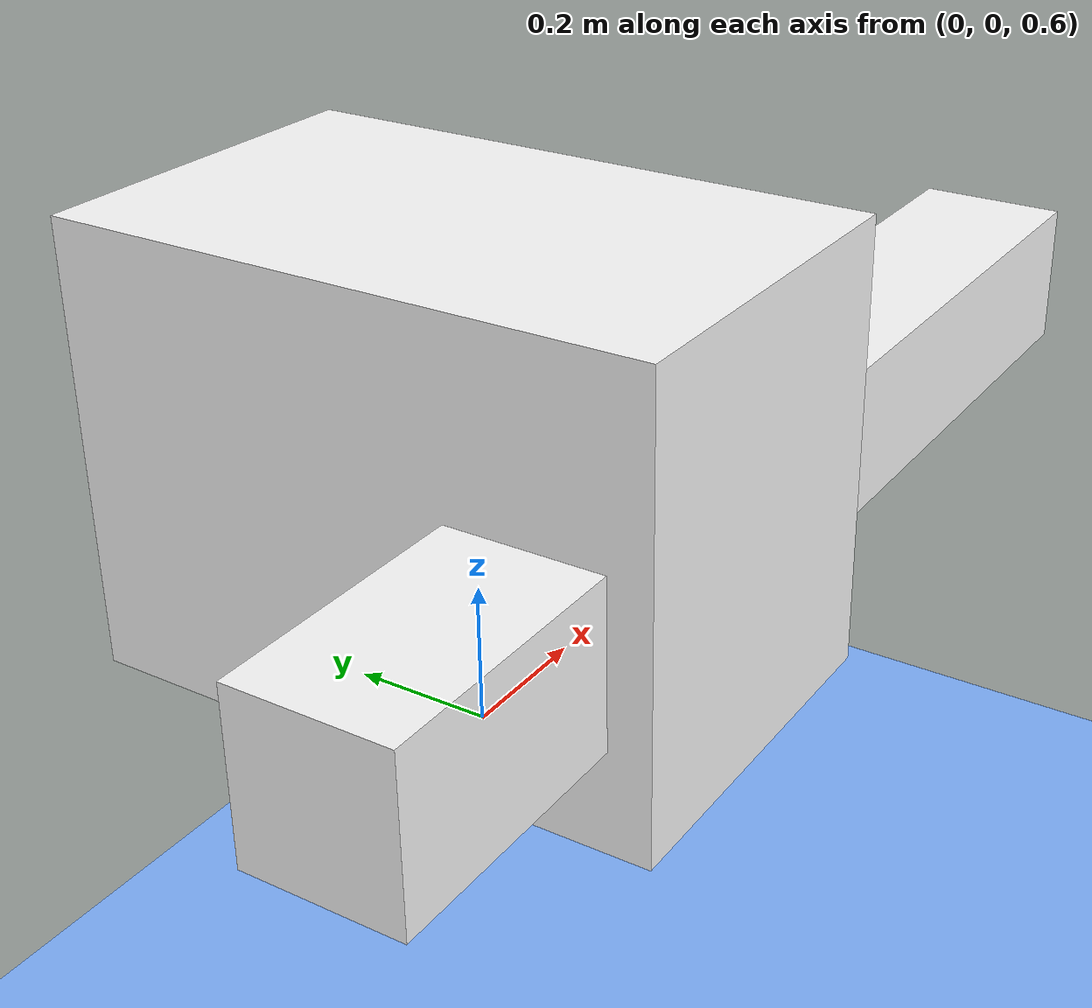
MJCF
<mujoco>
    <worldbody>
        <light diffuse=".5 .5 .5" pos="0 0 2" dir="0 -1 0" />
        <geom type="plane" size="10 10 0.1" rgba="0.5 0.7 1 1" />

        <body name="flappybird" pos="0 0 1" euler="0 0 0">
            <joint type="free" axis="0 0 0" pos="0 0 0" />
            <body name="body" pos="0 0 0" euler="0 0 0">
                <geom type="box" size="0.2545611512732974 0.4101761992818158 0.307556578966079" rgba="1 1 1 1" mass="0.012385462671495475" />
            </body>

            <body name="wing1" pos=".5 -.3 0" euler="0 -90 0">
                <joint name="joint1" type="hinge" axis="0 1 0" pos="0 0 .25" range="-45 45" />
                <geom type="box" size="0.1 0.10356238926288172 0.4541958790870215" rgba="1 1 1 1" mass="0.4158633061539602" />
            </body>

            <body name="wing2" pos="-.5 -.3 0" euler="0 90 0">
                <joint name="joint2" type="hinge" axis="0 1 0" pos="0 0 .25" range="-45 45" />
                <geom type="box" size="0.10593118406236865 0.1 0.1704167295524012" rgba="1 1 1 1" mass="0.3335500464196756" />
            </body>

        </body>
    </worldbody>

    <actuator>
        <motor joint="joint1" name="m1" gear="12.89881665675162" ctrllimited="true" ctrlrange="-5 5" />
        <motor joint="joint2" name="m2" gear="14.325147017742673" ctrllimited="true" ctrlrange="-5 5" />

</actuator>

</mujoco>
